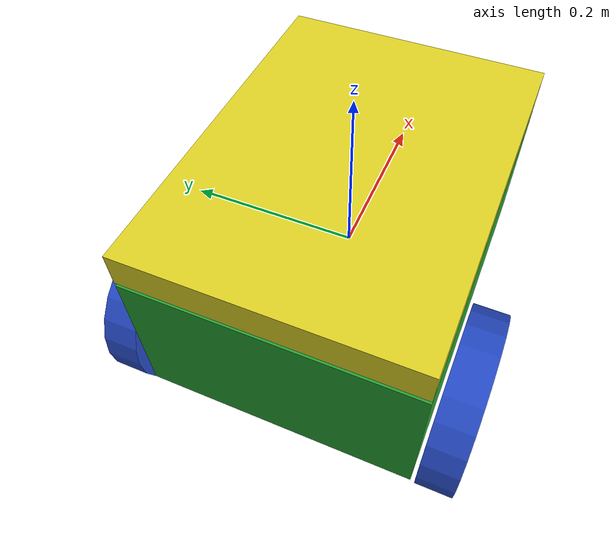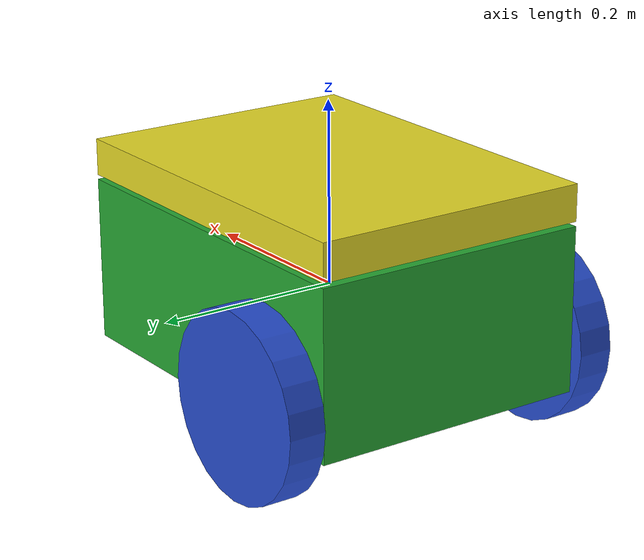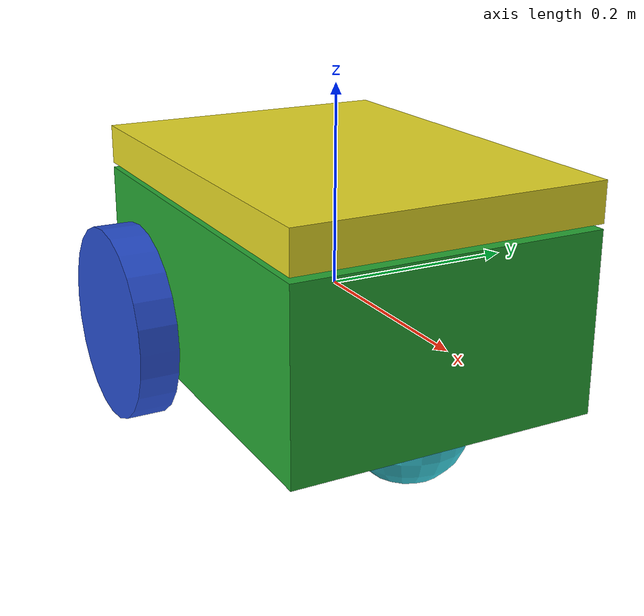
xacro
<?xml version="1.0"?>
<robot xmlns:xacro="http://ros.org/wiki/xacro">

    <!-- Define robot constants -->
    <xacro:property name="base_width" value="0.31" />
    <xacro:property name="base_length" value="0.42" />
    <xacro:property name="base_height" value="0.18" />
    <xacro:property name="turret_height" value="0.04" />
    <xacro:property name="turret_gap" value="0.025" />

    <xacro:property name="wheel_radius" value="0.10" />
    <xacro:property name="wheel_diameter" value="2*${wheel_radius}" />
    <xacro:property name="wheel_width" value="0.04" />
    <xacro:property name="wheel_ygap" value="0.025" />
    <xacro:property name="wheel_zoff" value="0.05" />
    <xacro:property name="wheel_xoff" value="0.12" />
    <xacro:property name="wheel_separation" value="0.4" />

    <xacro:property name="caster_xoff" value="0.14" />

    <!--    base link-->
    <link name="base_link">
        <visual>
            <geometry>
                <box size="${base_length} ${base_width} ${base_height}" />
            </geometry>
            <material name="green" />
        </visual>
        <collision>
            <geometry>
                <box size="${base_length} ${base_width} ${base_height}" />
            </geometry>
        </collision>

        <xacro:box_inertia m="15" w="${base_width}" d="${base_length}" h="${base_height}">
            <origin xyz="0 0 0" rpy="0 0 0" />
        </xacro:box_inertia>
    </link>

    <gazebo reference="base_link">
        <material>Gazebo/Green</material>
    </gazebo>

    <!-- Turret link -->
    <link name="turret_link">
        <visual>
            <geometry>
                <box size="${base_length} ${base_width} ${turret_height}" />
            </geometry>
            <material name="yellow" />
        </visual>
        <collision>
            <geometry>
                <box size="${base_length} ${base_width} ${turret_height}" />
            </geometry>
        </collision>

        <xacro:box_inertia m="5" w="${base_width}" d="${base_length}" h="${base_height}">
            <origin xyz="0 0 0" rpy="0 0 0" />
        </xacro:box_inertia>

    </link>

    <gazebo reference="turret_link">
        <material>Gazebo/Yellow</material>
    </gazebo>

    <joint name="turret_joint" type="continuous">
        <parent link="base_link" />
        <child link="turret_link" />
        <origin xyz="0 0 ${(base_height/2 + turret_gap)} " rpy="0 0 0" />
        <axis xyz="0 0 1" />
    </joint>

    <!-- Robot Footprint -->
    <link name="base_footprint" />

    <joint name="base_joint" type="fixed">
        <parent link="base_link" />
        <child link="base_footprint" />
        <origin xyz="0.0 0.0 ${-(wheel_radius+wheel_zoff)}" rpy="0 0 0" />
    </joint>

    <!--Left
    wheel    -->
    <link name="drivewhl_l_joint_link">
        <visual>
            <geometry>
                <cylinder radius="${wheel_radius}" length="${wheel_width}" />
            </geometry>
            <material name="blue" />
        </visual>
        <collision>
            <geometry>
                <cylinder radius="${wheel_radius}" length="${wheel_width}" />
            </geometry>
        </collision>

        <xacro:cylinder_inertia m="0.5" r="${wheel_radius}" h="${wheel_width}">
            <origin xyz="0 0 0" rpy="0 0 0" />
        </xacro:cylinder_inertia>
    </link>

    <gazebo reference="drivewhl_l_joint_link">
        <material>Gazebo/Blue</material>
    </gazebo>

    <joint name="drivewhl_l_joint" type="continuous">
        <parent link="base_link" />
        <child link="drivewhl_l_joint_link" />
        <origin xyz="-${wheel_xoff} ${base_width/2+wheel_ygap} -${wheel_zoff}" rpy="-${pi/2} 0 0" />
        <axis xyz="0 0 1" />
    </joint>

    <!-- Right wheel    -->
    <link name="drivewhl_r_joint_link">
        <visual>
            <geometry>
                <cylinder radius="${wheel_radius}" length="${wheel_width}" />
            </geometry>
            <material name="blue" />
        </visual>
        <collision>
            <geometry>
                <cylinder radius="${wheel_radius}" length="${wheel_width}" />
            </geometry>
        </collision>

        <xacro:cylinder_inertia m="0.5" r="${wheel_radius}" h="${wheel_width}">
            <origin xyz="0 0 0" rpy="0 0 0" />
        </xacro:cylinder_inertia>
    </link>

    <gazebo reference="drivewhl_r_joint_link">
        <material>Gazebo/Blue</material>
    </gazebo>

    <joint name="drivewhl_r_joint" type="continuous">
        <parent link="base_link" />
        <child link="drivewhl_r_joint_link" />
        <origin xyz="-${wheel_xoff} -${base_width/2+wheel_ygap} -${wheel_zoff}" rpy="${pi/2} 0 0" />
        <axis xyz="0 0 -1" />
    </joint>

    <!-- Caster Wheel -->
    <link name="front_caster">
        <visual>
            <geometry>
                <sphere radius="${(wheel_radius+wheel_zoff-(base_height/2))}" />
            </geometry>
            <material name="cyan" />
        </visual>
        <collision>
            <geometry>
                <sphere radius="${(wheel_radius+wheel_zoff-(base_height/2))}" />
            </geometry>
        </collision>

        <xacro:sphere_inertia m="0.5" r="${(wheel_radius+wheel_zoff-(base_height/2))}">
            <origin xyz="0 0 0" rpy="0 0 0" />
        </xacro:sphere_inertia>
    </link>

    <gazebo reference="front_caster">
        <material>Gazebo/Black</material>
        <!-- Defining caster wheel's friction coefficients for a smooth motion-->
        <mu1 value="0.001" />
        <mu2 value="0.001" />
    </gazebo>

    <joint name="caster_joint" type="fixed">
        <parent link="base_link" />
        <child link="front_caster" />
        <origin xyz="${caster_xoff} 0.0 ${-(base_height/2)}" rpy="0 0 0" />
    </joint>
</robot>
